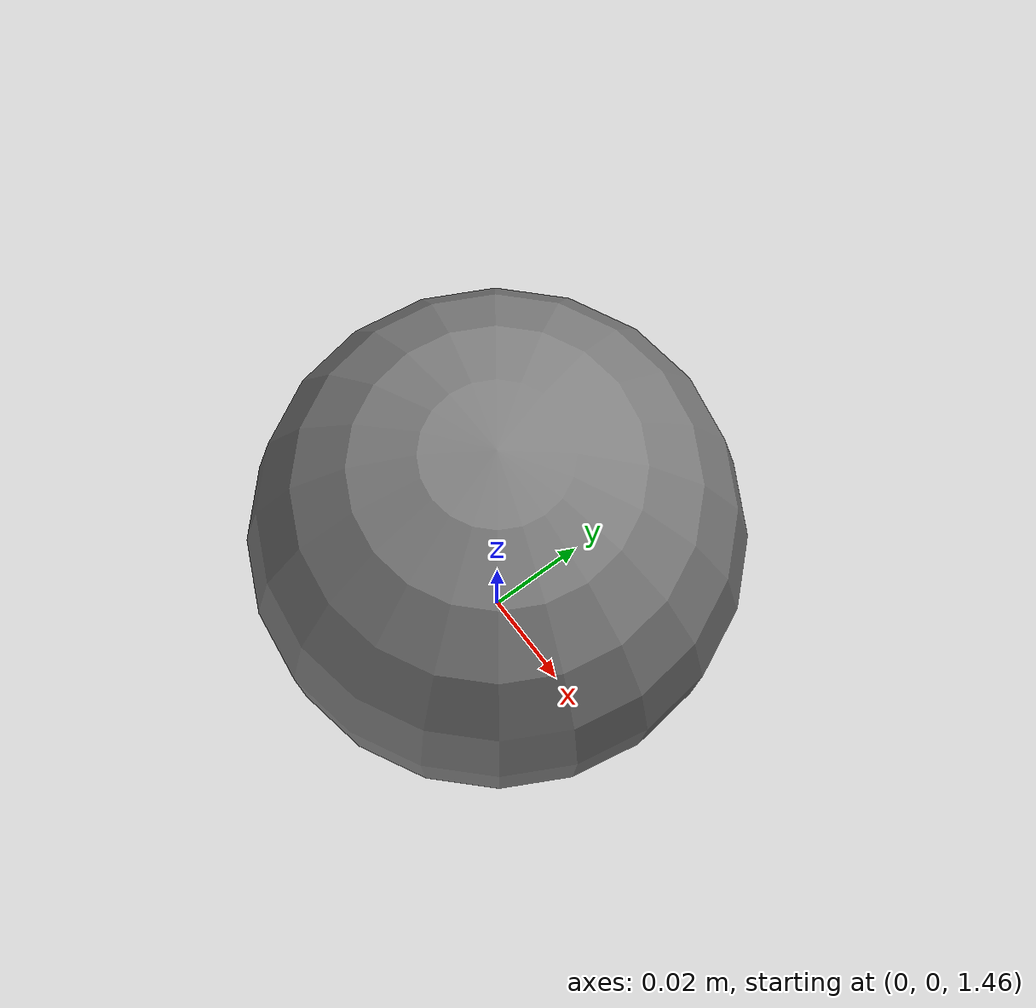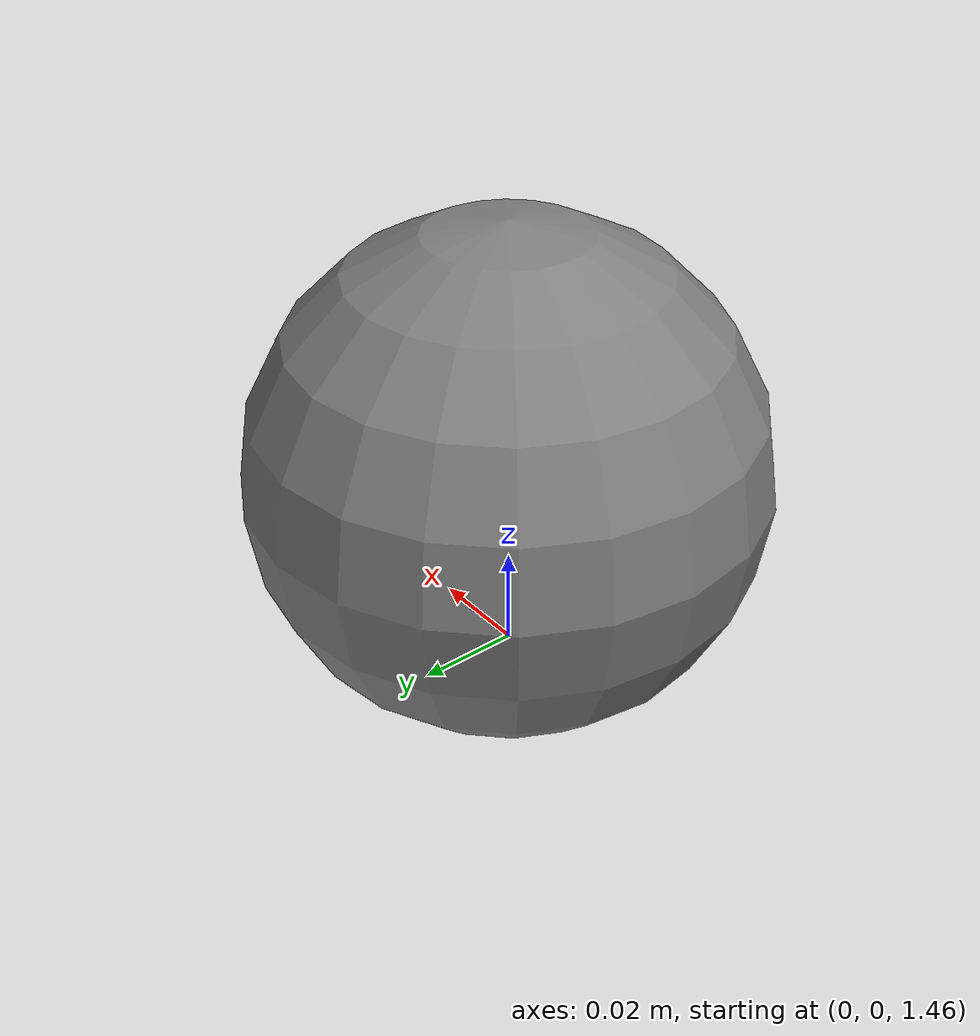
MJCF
<mujoco model="rangefinder">
  <option gravity="0 0 0" timestep="0.001"/>
  <compiler angle="radian"/>
  <worldbody>
    <geom name="ground" type="box" size="5 5 0.005" pos="0 0 -0.005"/>
    <body name="sensor_body" pos="0 0 1.5">
      <joint name="slide" type="slide" axis="0 0 1"/>
      <geom type="sphere" size="0.05" mass="0.5" contype="0" conaffinity="0"/>
      <site name="eye_down" pos="0 0 0" euler="3.14159 0 0"/>
      <site name="eye_side" pos="0 0 0" euler="0 -1.5708 0"/>
    </body>
  </worldbody>
  <sensor>
    <rangefinder name="down" site="eye_down"/>
    <rangefinder name="side" site="eye_side"/>
  </sensor>
</mujoco>
